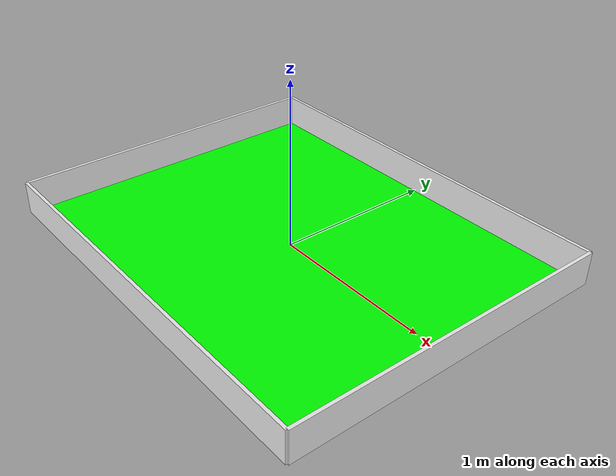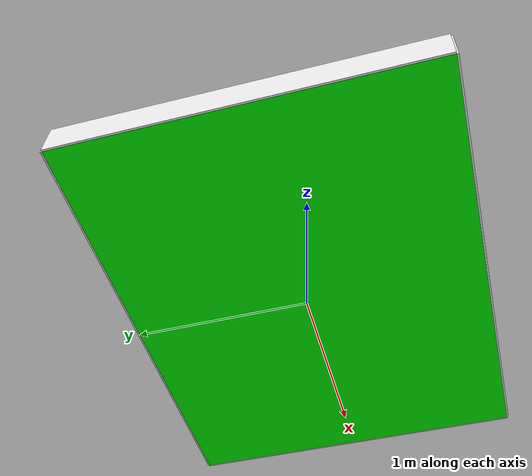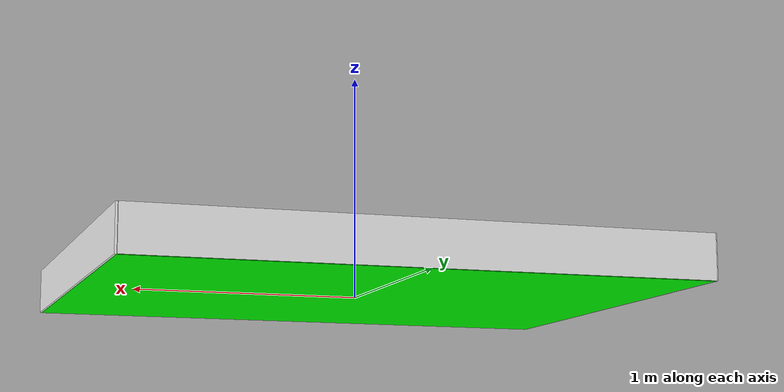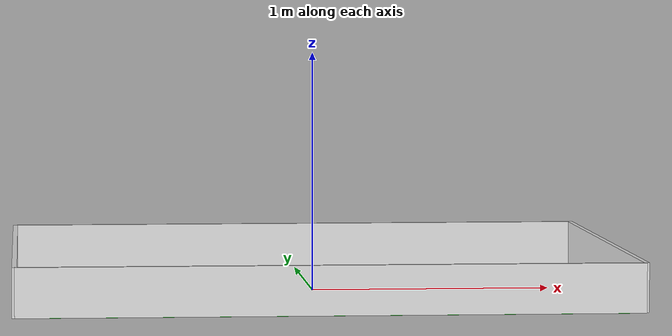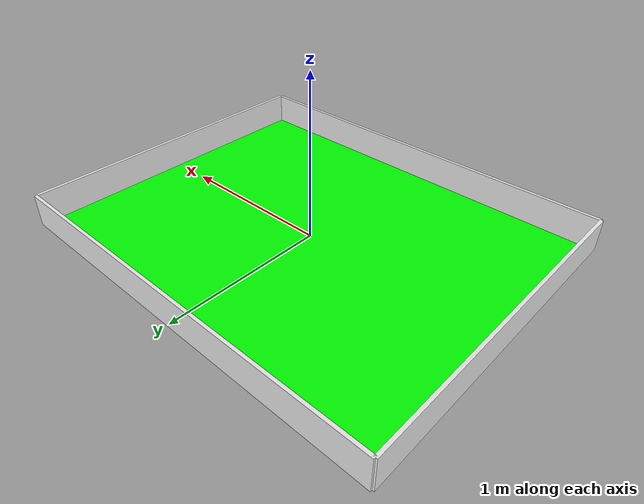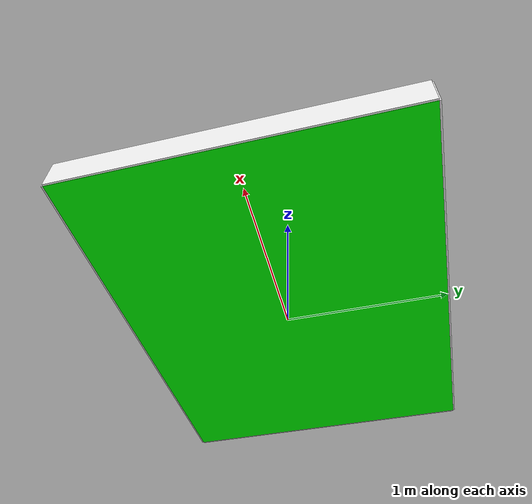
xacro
<?xml version="1.0"?>
<robot name="field" xmlns:xacro="http://www.ros.org/wiki/xacro">

  <material name="green"><color rgba="0.0 1.0 0.0 1.0" /></material>

  <xacro:property name="w"         value= "2.5"/>
  <xacro:property name="l"         value= "2.0"/>
  <xacro:property name="wall_w"    value= "0.02"/>

  <link name="field_base"></link>
  <!-- Camera link -->
  <joint name="field_link_joint" type="fixed">
    <origin xyz="0 0 0" rpy="0 0 0" />
    <parent link="field_base"/>
    <child link="field_base_link" />
  </joint>

  <link name="field_base_link">
    <visual>
      <origin xyz="0 0 0" rpy="0 0 0" />
      <geometry>
        <box size="${w} ${l} 0.003"/>
      </geometry>
      <material name="green" />
    </visual>
    <collision>
      <origin xyz="0 0 0"/>
      <geometry>
        <box size="${w} ${l} 0.003"/>
      </geometry>
    </collision>
    <inertial>
      <origin xyz="0 0 0" rpy="0 0 0"/>
      <mass value="100000"/>
      <inertia ixx="100000"  ixy="0"  ixz="0" iyy="100000" iyz="0" izz="100000" />
    </inertial>
  </link>

  <joint name="right_wall_joint" type="fixed">
    <origin xyz="0.0 ${l/2} 0.1" rpy="0 0 0" />
    <parent link="field_base_link"/>
    <child link="right_wall" />
  </joint>
  <link name="right_wall">
    <visual>
      <origin xyz="0 0 0" rpy="0 0 0" />
      <geometry>
        <box size="${w} ${wall_w} 0.2"/>
      </geometry>
      <material name="white" />
    </visual>
    <collision>
      <origin xyz="0 0 0"/>
      <geometry>
        <box size="${w} ${wall_w} 0.2"/>
      </geometry>
    </collision>
    <inertial>
      <origin xyz="0 0 0" rpy="0 0 0"/>
      <mass value="1000"/>
      <inertia ixx="1000"  ixy="0"  ixz="0" iyy="1000" iyz="0" izz="1000" />
    </inertial>
  </link>

  <joint name="front_wall_joint" type="fixed">
    <origin xyz="${w/2} 0.0 0.1" rpy="0 0 0" />
    <parent link="field_base_link"/>
    <child link="front_wall" />
  </joint>
  <link name="front_wall">
    <visual>
      <origin xyz="0 0 0" rpy="0 0 0" />
      <geometry>
        <box size="${wall_w} ${l}  0.2"/>
      </geometry>
      <material name="white" />
    </visual>
    <collision>
      <origin xyz="0 0 0"/>
      <geometry>
        <box size="${wall_w} ${l} 0.2"/>
      </geometry>
    </collision>
    <inertial>
      <origin xyz="0 0 0" rpy="0 0 0"/>
      <mass value="1000"/>
      <inertia ixx="1000"  ixy="0"  ixz="0" iyy="1000" iyz="0" izz="1000" />
    </inertial>
  </link>

  <joint name="left_wall_joint" type="fixed">
    <origin xyz="0 -${l/2} 0.1" rpy="0 0 0" />
    <parent link="field_base_link"/>
    <child link="left_wall" />
  </joint>
  <link name="left_wall">
    <visual>
      <origin xyz="0 0 0" rpy="0 0 0" />
      <geometry>
        <box size="${w} ${wall_w} 0.2"/>
      </geometry>
      <material name="white" />
    </visual>
    <collision>
      <origin xyz="0 0 0"/>
      <geometry>
        <box size="${w} ${wall_w} 0.2"/>
      </geometry>
    </collision>
    <inertial>
      <origin xyz="0 0 0" rpy="0 0 0"/>
      <mass value="1000"/>
      <inertia ixx="1000"  ixy="0"  ixz="0" iyy="1000" iyz="0" izz="1000" />
    </inertial>
  </link>

  <joint name="hind_wall_joint" type="fixed">
    <origin xyz="-${w/2} 0.0 0.1" rpy="0 0 0" />
    <parent link="field_base_link"/>
    <child link="hind_wall" />
  </joint>
  <link name="hind_wall">
    <visual>
      <origin xyz="0 0 0" rpy="0 0 0" />
      <geometry>
        <box size="${wall_w} ${l} 0.2"/>
      </geometry>
      <material name="white" />
    </visual>
    <collision>
      <origin xyz="0 0 0"/>
      <geometry>
        <box size="${wall_w} ${l} 0.2"/>
      </geometry>
    </collision>
    <inertial>
      <origin xyz="0 0 0" rpy="0 0 0"/>
      <mass value="1000"/>
      <inertia ixx="1000"  ixy="0"  ixz="0" iyy="1000" iyz="0" izz="1000" />
    </inertial>
  </link>

  <gazebo reference="field_base" >
      <material>Gazebo/Green</material>
  </gazebo>
</robot>
